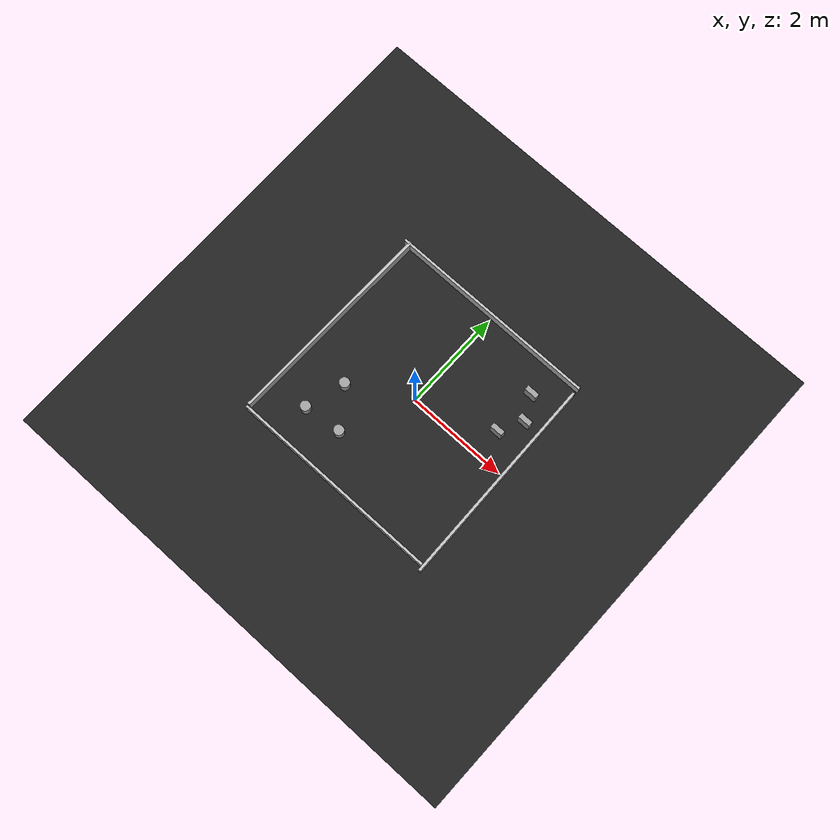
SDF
<sdf version="1.6">
 <world name="default">
  <scene>
   <ambient>0 0 0 1</ambient>
   <shadows>0</shadows>
   <grid>0</grid>
   <background>0.7 0.7 0.7 1</background>
  </scene>
  <include><uri>model://turtlebot3_autorace_2020/tag</uri></include>
  <include><uri>model://turtlebot3_autorace_2020/wall_f</uri><pose>0.008 -2.14 0.18 -0 0 -0</pose></include>
  <include><uri>model://turtlebot3_autorace_2020/wall_d</uri><pose>2.1 -0.15 0.18 -0 0 -1.5506</pose></include>
  <include><uri>model://turtlebot3_autorace_2020/wall_b</uri><pose>-0.017 2.072 0.18 0 0 0</pose></include>
  <include><uri>model://turtlebot3_autorace_2020/wall_e</uri><pose>-2.05 0.006 0.18 0 -0 1.5506</pose></include>
  <light name="sun" type="directional">
   <pose>0 0 10 0 -0 0</pose>
   <diffuse>0.8 0.8 0.8 1</diffuse>
   <specular>0.1 0.1 0.1 1</specular>
   <attenuation>
    <range>1000</range>
    <constant>0.9</constant>
    <linear>0.01</linear>
    <quadratic>0.001</quadratic>
   </attenuation>
   <direction>-0.5 0.5 -1</direction>
  </light>
  <model name="ground2">
   <pose>0 0 -0.1 0 -0 0</pose>
   <static>1</static>
   <link name="ground">
    <collision name="ground_coll"><geometry><box><size>8 8 0.01</size></box></geometry></collision>
    <visual name="ground_vis">
     <geometry><box><size>10 10 0.01</size></box></geometry>
     <material>
      <script><uri>file://media/materials/scripts/gazebo.material</uri><name>Gazebo/FlatBlack</name></script>
     </material>
    </visual>
   </link>
  </model>
  <gravity>0 0 -9.8</gravity>
  <magnetic_field>6e-06 2.3e-05 -4.2e-05</magnetic_field>
  <atmosphere type="adiabatic"/>
  <physics name="default_physics" default="0" type="ode">
   <max_step_size>0.001</max_step_size>
   <real_time_factor>1</real_time_factor>
   <real_time_update_rate>1000</real_time_update_rate>
  </physics>
  <spherical_coordinates>
   <surface_model>EARTH_WGS84</surface_model>
   <latitude_deg>0</latitude_deg>
   <longitude_deg>0</longitude_deg>
   <elevation>0</elevation>
   <heading_deg>0</heading_deg>
  </spherical_coordinates>
  <light name="user_point_light_1" type="point">
   <pose>-1.648146 0.604519 1 0 -0 0</pose>
   <diffuse>0.5 0.5 0.5 1</diffuse>
   <specular>0.1 0.1 0.1 1</specular>
   <attenuation>
    <range>20</range>
    <constant>0.5</constant>
    <linear>0.01</linear>
    <quadratic>0.001</quadratic>
   </attenuation>
   <cast_shadows>0</cast_shadows>
   <direction>0 0 -1</direction>
  </light>
  <light name="user_point_light_2" type="point">
   <pose>1.63854 1.69565 1 0 -0 0</pose>
   <diffuse>0.5 0.5 0.5 1</diffuse>
   <specular>0.1 0.1 0.1 1</specular>
   <attenuation>
    <range>20</range>
    <constant>0.5</constant>
    <linear>0.01</linear>
    <quadratic>0.001</quadratic>
   </attenuation>
   <cast_shadows>0</cast_shadows>
   <direction>0 0 -1</direction>
  </light>
  <light name="user_point_light_3" type="point">
   <pose>0.42  -3.31 1 0 -0 0</pose>
   <diffuse>0.5 0.5 0.5 1</diffuse>
   <specular>0.1 0.1 0.1 1</specular>
   <attenuation>
    <range>20</range>
    <constant>0.5</constant>
    <linear>0.01</linear>
    <quadratic>0.001</quadratic>
   </attenuation>
   <cast_shadows>0</cast_shadows>
   <direction>0 0 -1</direction>
  </light>
  <model name="tunnel_obstacle">
   <link name="obstacle_1">
    <pose>0.42322 -0.212034 0.0 0 -0 0</pose>
    <inertial>
     <mass>0.0416663</mass>
     <inertia>
      <ixx>0.00098188</ixx>
      <ixy>0</ixy>
      <ixz>0</ixz>
      <iyy>0.00098188</iyy>
      <iyz>0</iyz>
      <izz>0.00046751</izz>
     </inertia>
    </inertial>
    <visual name="visual">
     <geometry><cylinder><radius>0.1</radius><length>0.25</length></cylinder></geometry>
     <material>
      <lighting>1</lighting>
      <script><uri>file://media/materials/scripts/gazebo.material</uri><name>Gazebo/Grey</name></script>
      <ambient>0.3 0.3 0.3 1</ambient>
      <diffuse>0.7 0.7 0.7 1</diffuse>
      <specular>0.01 0.01 0.01 1</specular>
      <emissive>0 0 0 1</emissive>
      <shader type="pixel"><normal_map>__default__</normal_map></shader>
     </material>
    </visual>
    <collision name="collision">
     <geometry><cylinder><radius>0.1</radius><length>0.46418</length></cylinder></geometry>
     <surface>
      <friction>
       <ode><mu>1</mu><mu2>1</mu2><fdir1>0 0 0</fdir1><slip1>0</slip1><slip2>0</slip2></ode>
       <torsional>
        <coefficient>1</coefficient>
        <patch_radius>0</patch_radius>
        <surface_radius>0</surface_radius>
        <use_patch_radius>1</use_patch_radius>
        <ode><slip>0</slip></ode>
       </torsional>
      </friction>
      <bounce><restitution_coefficient>0</restitution_coefficient><threshold>1e+06</threshold></bounce>
      <contact>
       <collide_without_contact>0</collide_without_contact>
       <collide_without_contact_bitmask>1</collide_without_contact_bitmask>
       <collide_bitmask>1</collide_bitmask>
       <ode>
        <soft_cfm>0</soft_cfm>
        <soft_erp>0.2</soft_erp>
        <kp>1e+13</kp>
        <kd>1</kd>
        <max_vel>0.01</max_vel>
        <min_depth>0</min_depth>
       </ode>
       <bullet>
        <split_impulse>1</split_impulse>
        <split_impulse_penetration_threshold>-0.01</split_impulse_penetration_threshold>
        <soft_cfm>0</soft_cfm>
        <soft_erp>0.2</soft_erp>
        <kp>1e+13</kp>
        <kd>1</kd>
       </bullet>
      </contact>
     </surface>
    </collision>
   </link>
   <link name="obstacle_2">
    <pose>-0.323729 -0.287563 0.0 0 -0 0</pose>
    <inertial>
     <mass>0.0416663</mass>
     <inertia>
      <ixx>0.00098188</ixx>
      <ixy>0</ixy>
      <ixz>0</ixz>
      <iyy>0.00098188</iyy>
      <iyz>0</iyz>
      <izz>0.00046751</izz>
     </inertia>
    </inertial>
    <visual name="visual">
     <geometry><cylinder><radius>0.1</radius><length>0.25</length></cylinder></geometry>
     <material>
      <lighting>1</lighting>
      <script><uri>file://media/materials/scripts/gazebo.material</uri><name>Gazebo/Grey</name></script>
      <ambient>0.3 0.3 0.3 1</ambient>
      <diffuse>0.7 0.7 0.7 1</diffuse>
      <specular>0.01 0.01 0.01 1</specular>
      <emissive>0 0 0 1</emissive>
      <shader type="pixel"><normal_map>__default__</normal_map></shader>
     </material>
    </visual>
    <collision name="collision">
     <geometry><cylinder><radius>0.1</radius><length>0.46418</length></cylinder></geometry>
     <surface>
      <friction>
       <ode><mu>1</mu><mu2>1</mu2><fdir1>0 0 0</fdir1><slip1>0</slip1><slip2>0</slip2></ode>
       <torsional>
        <coefficient>1</coefficient>
        <patch_radius>0</patch_radius>
        <surface_radius>0</surface_radius>
        <use_patch_radius>1</use_patch_radius>
        <ode><slip>0</slip></ode>
       </torsional>
      </friction>
      <bounce><restitution_coefficient>0</restitution_coefficient><threshold>1e+06</threshold></bounce>
      <contact>
       <collide_without_contact>0</collide_without_contact>
       <collide_without_contact_bitmask>1</collide_without_contact_bitmask>
       <collide_bitmask>1</collide_bitmask>
       <ode>
        <soft_cfm>0</soft_cfm>
        <soft_erp>0.2</soft_erp>
        <kp>1e+13</kp>
        <kd>1</kd>
        <max_vel>0.01</max_vel>
        <min_depth>0</min_depth>
       </ode>
       <bullet>
        <split_impulse>1</split_impulse>
        <split_impulse_penetration_threshold>-0.01</split_impulse_penetration_threshold>
        <soft_cfm>0</soft_cfm>
        <soft_erp>0.2</soft_erp>
        <kp>1e+13</kp>
        <kd>1</kd>
       </bullet>
      </contact>
     </surface>
    </collision>
   </link>
   <link name="obstacle_3">
    <pose>-0.099492 0.499594 0.0 0 -0 0</pose>
    <inertial>
     <mass>0.0416663</mass>
     <inertia>
      <ixx>0.00098188</ixx>
      <ixy>0</ixy>
      <ixz>0</ixz>
      <iyy>0.00098188</iyy>
      <iyz>0</iyz>
      <izz>0.00046751</izz>
     </inertia>
    </inertial>
    <visual name="visual">
     <geometry><cylinder><radius>0.1</radius><length>0.25</length></cylinder></geometry>
     <material>
      <lighting>1</lighting>
      <script><uri>file://media/materials/scripts/gazebo.material</uri><name>Gazebo/Grey</name></script>
      <ambient>0.3 0.3 0.3 1</ambient>
      <diffuse>0.7 0.7 0.7 1</diffuse>
      <specular>0.01 0.01 0.01 1</specular>
      <emissive>0 0 0 1</emissive>
      <shader type="pixel"><normal_map>__default__</normal_map></shader>
     </material>
    </visual>
    <collision name="collision">
     <geometry><cylinder><radius>0.1</radius><length>0.46418</length></cylinder></geometry>
     <surface>
      <friction>
       <ode><mu>1</mu><mu2>1</mu2><fdir1>0 0 0</fdir1><slip1>0</slip1><slip2>0</slip2></ode>
       <torsional>
        <coefficient>1</coefficient>
        <patch_radius>0</patch_radius>
        <surface_radius>0</surface_radius>
        <use_patch_radius>1</use_patch_radius>
        <ode><slip>0</slip></ode>
       </torsional>
      </friction>
      <bounce><restitution_coefficient>0</restitution_coefficient><threshold>1e+06</threshold></bounce>
      <contact>
       <collide_without_contact>0</collide_without_contact>
       <collide_without_contact_bitmask>1</collide_without_contact_bitmask>
       <collide_bitmask>1</collide_bitmask>
       <ode>
        <soft_cfm>0</soft_cfm>
        <soft_erp>0.2</soft_erp>
        <kp>1e+13</kp>
        <kd>1</kd>
        <max_vel>0.01</max_vel>
        <min_depth>0</min_depth>
       </ode>
       <bullet>
        <split_impulse>1</split_impulse>
        <split_impulse_penetration_threshold>-0.01</split_impulse_penetration_threshold>
        <soft_cfm>0</soft_cfm>
        <soft_erp>0.2</soft_erp>
        <kp>1e+13</kp>
        <kd>1</kd>
       </bullet>
      </contact>
     </surface>
    </collision>
   </link>
   <static>1</static>
   <pose>-1.04145 -1.12671 0 0 -0 0</pose>
  </model>
  <model name="barrier_1">
   <link name="link">
    <inertial>
     <mass>1</mass>
     <inertia>
      <ixx>0.166667</ixx>
      <ixy>0</ixy>
      <ixz>0</ixz>
      <iyy>0.166667</iyy>
      <iyz>0</iyz>
      <izz>0.166667</izz>
     </inertia>
    </inertial>
    <visual name="visual">
     <geometry><box><size>0.25 0.1 0.3</size></box></geometry>
     <material>
      <script><name>Gazebo/Grey</name><uri>file://media/materials/scripts/gazebo.material</uri></script>
      <shader type="pixel"><normal_map>__default__</normal_map></shader>
      <ambient>0.3 0.3 0.3 1</ambient>
      <diffuse>0.7 0.7 0.7 1</diffuse>
      <specular>0.01 0.01 0.01 1</specular>
      <emissive>0 0 0 1</emissive>
     </material>
    </visual>
    <collision name="collision">
     <geometry><box><size>0.25 0.1 0.3</size></box></geometry>
     <surface>
      <friction>
       <ode><mu>1</mu><mu2>1</mu2><fdir1>0 0 0</fdir1><slip1>0</slip1><slip2>0</slip2></ode>
       <torsional>
        <coefficient>1</coefficient>
        <patch_radius>0</patch_radius>
        <surface_radius>0</surface_radius>
        <use_patch_radius>1</use_patch_radius>
        <ode><slip>0</slip></ode>
       </torsional>
      </friction>
      <bounce><restitution_coefficient>0</restitution_coefficient><threshold>1e+06</threshold></bounce>
      <contact>
       <collide_without_contact>0</collide_without_contact>
       <collide_without_contact_bitmask>1</collide_without_contact_bitmask>
       <collide_bitmask>1</collide_bitmask>
       <ode>
        <soft_cfm>0</soft_cfm>
        <soft_erp>0.2</soft_erp>
        <kp>1e+13</kp>
        <kd>1</kd>
        <max_vel>0.01</max_vel>
        <min_depth>0</min_depth>
       </ode>
       <bullet>
        <split_impulse>1</split_impulse>
        <split_impulse_penetration_threshold>-0.01</split_impulse_penetration_threshold>
        <soft_cfm>0</soft_cfm>
        <soft_erp>0.2</soft_erp>
        <kp>1e+13</kp>
        <kd>1</kd>
       </bullet>
      </contact>
     </surface>
    </collision>
   </link>
   <static>0</static>
   <pose>1.49 0.54 0.15 0 -0 0</pose>
  </model>
  <model name="barrier_2">
   <link name="link">
    <inertial>
     <mass>1</mass>
     <inertia>
      <ixx>0.166667</ixx>
      <ixy>0</ixy>
      <ixz>0</ixz>
      <iyy>0.166667</iyy>
      <iyz>0</iyz>
      <izz>0.166667</izz>
     </inertia>
    </inertial>
    <visual name="visual">
     <geometry><box><size>0.25 0.1 0.3</size></box></geometry>
     <material>
      <script><name>Gazebo/Grey</name><uri>file://media/materials/scripts/gazebo.material</uri></script>
      <shader type="pixel"><normal_map>__default__</normal_map></shader>
      <ambient>0.3 0.3 0.3 1</ambient>
      <diffuse>0.7 0.7 0.7 1</diffuse>
      <specular>0.01 0.01 0.01 1</specular>
      <emissive>0 0 0 1</emissive>
     </material>
    </visual>
    <collision name="collision">
     <geometry><box><size>0.25 0.1 0.3</size></box></geometry>
     <surface>
      <friction>
       <ode><mu>1</mu><mu2>1</mu2><fdir1>0 0 0</fdir1><slip1>0</slip1><slip2>0</slip2></ode>
       <torsional>
        <coefficient>1</coefficient>
        <patch_radius>0</patch_radius>
        <surface_radius>0</surface_radius>
        <use_patch_radius>1</use_patch_radius>
        <ode><slip>0</slip></ode>
       </torsional>
      </friction>
      <bounce><restitution_coefficient>0</restitution_coefficient><threshold>1e+06</threshold></bounce>
      <contact>
       <collide_without_contact>0</collide_without_contact>
       <collide_without_contact_bitmask>1</collide_without_contact_bitmask>
       <collide_bitmask>1</collide_bitmask>
       <ode>
        <soft_cfm>0</soft_cfm>
        <soft_erp>0.2</soft_erp>
        <kp>1e+13</kp>
        <kd>1</kd>
        <max_vel>0.01</max_vel>
        <min_depth>0</min_depth>
       </ode>
       <bullet>
        <split_impulse>1</split_impulse>
        <split_impulse_penetration_threshold>-0.01</split_impulse_penetration_threshold>
        <soft_cfm>0</soft_cfm>
        <soft_erp>0.2</soft_erp>
        <kp>1e+13</kp>
        <kd>1</kd>
       </bullet>
      </contact>
     </surface>
    </collision>
   </link>
   <static>0</static>
   <pose>1.74 1 0.15 0 -0 0</pose>
  </model>
  <model name="barrier_3">
   <link name="link">
    <inertial>
     <mass>1</mass>
     <inertia>
      <ixx>0.166667</ixx>
      <ixy>0</ixy>
      <ixz>0</ixz>
      <iyy>0.166667</iyy>
      <iyz>0</iyz>
      <izz>0.166667</izz>
     </inertia>
    </inertial>
    <visual name="visual">
     <geometry><box><size>0.25 0.1 0.3</size></box></geometry>
     <material>
      <script><name>Gazebo/Grey</name><uri>file://media/materials/scripts/gazebo.material</uri></script>
      <shader type="pixel"><normal_map>__default__</normal_map></shader>
      <ambient>0.3 0.3 0.3 1</ambient>
      <diffuse>0.7 0.7 0.7 1</diffuse>
      <specular>0.01 0.01 0.01 1</specular>
      <emissive>0 0 0 1</emissive>
     </material>
    </visual>
    <collision name="collision">
     <geometry><box><size>0.25 0.1 0.3</size></box></geometry>
     <surface>
      <friction>
       <ode><mu>1</mu><mu2>1</mu2><fdir1>0 0 0</fdir1><slip1>0</slip1><slip2>0</slip2></ode>
       <torsional>
        <coefficient>1</coefficient>
        <patch_radius>0</patch_radius>
        <surface_radius>0</surface_radius>
        <use_patch_radius>1</use_patch_radius>
        <ode><slip>0</slip></ode>
       </torsional>
      </friction>
      <bounce><restitution_coefficient>0</restitution_coefficient><threshold>1e+06</threshold></bounce>
      <contact>
       <collide_without_contact>0</collide_without_contact>
       <collide_without_contact_bitmask>1</collide_without_contact_bitmask>
       <collide_bitmask>1</collide_bitmask>
       <ode>
        <soft_cfm>0</soft_cfm>
        <soft_erp>0.2</soft_erp>
        <kp>1e+13</kp>
        <kd>1</kd>
        <max_vel>0.01</max_vel>
        <min_depth>0</min_depth>
       </ode>
       <bullet>
        <split_impulse>1</split_impulse>
        <split_impulse_penetration_threshold>-0.01</split_impulse_penetration_threshold>
        <soft_cfm>0</soft_cfm>
        <soft_erp>0.2</soft_erp>
        <kp>1e+13</kp>
        <kd>1</kd>
       </bullet>
      </contact>
     </surface>
    </collision>
   </link>
   <static>0</static>
   <pose>1.49 1.464 0.15 0 -0 0</pose>
  </model>
 </world>
</sdf>

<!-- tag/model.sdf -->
<sdf version="1.6">
  <model name="tag">
    <pose>0 0 0.125 0 0 0</pose>
    <link name="box">
      <pose>0 0 0 0 0 0</pose>
      <collision name="collision">
        <geometry>
          <box>
            <size>0.125 0.090 0.12</size>
          </box>
        </geometry>
      </collision>
      <visual name="visual">
        <geometry>
          <box>
            <size>0.125 0.090 0.12</size>
          </box>
        </geometry>
        <material>
          <script>
            <uri>model://turtlebot3_autorace_2020/tag/materials/scripts</uri>
            <uri>model://turtlebot3_autorace_2020/tag/materials/textures</uri>
            <name>tag</name>
          </script>
        </material>
      </visual>
    </link>
  </model>
</sdf>

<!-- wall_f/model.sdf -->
<sdf version="1.6">
  <model name="wall_f">
    <pose>0 0 0.125 0 0 0</pose>
    <link name="box">
      <pose>0 0 0 0 0 0</pose>
      <collision name="collision">
        <geometry>
          <box>
            <size>4.2 0.05 0.25</size>
          </box>
        </geometry>
      </collision>
      <visual name="visual">
        <geometry>
          <box>
            <size>4.2 0.05 0.25</size>
          </box>
        </geometry>
        <material>
          <script>
            <uri>model://turtlebot3_autorace_2020/wall_f/materials/scripts</uri>
            <uri>model://turtlebot3_autorace_2020/wall_f/materials/textures</uri>
            <name>wall_f</name>
          </script>
        </material>
      </visual>
    </link>
  </model>
</sdf>

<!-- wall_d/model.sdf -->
<sdf version="1.6">
  <model name="wall_d">
    <pose>0 0 0.125 0 0 0</pose>
    <link name="box">
      <pose>0 0 0 0 0 0</pose>
      <collision name="collision">
        <geometry>
          <box>
            <size>4.2 0.05 0.25</size>
          </box>
        </geometry>
      </collision>
      <visual name="visual">
        <geometry>
          <box>
            <size>4.2 0.05 0.25</size>
          </box>
        </geometry>
        <material>
          <script>
            <uri>model://turtlebot3_autorace_2020/wall_d/materials/scripts</uri>
            <uri>model://turtlebot3_autorace_2020/wall_d/materials/textures</uri>
            <name>wall_d</name>
          </script>
        </material>
      </visual>
    </link>
  </model>
</sdf>

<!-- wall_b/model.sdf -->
<sdf version="1.6">
  <model name="wall_b">
    <pose>0 0 0.125 0 0 0</pose>
    <link name="box">
      <pose>0 0 0 0 0 0</pose>
      <collision name="collision">
        <geometry>
          <box>
            <size>4.2 0.05 0.25</size>
          </box>
        </geometry>
      </collision>
      <visual name="visual">
        <geometry>
          <box>
            <size>4.2 0.05 0.25</size>
          </box>
        </geometry>
        <material>
          <script>
            <uri>model://turtlebot3_autorace_2020/wall_b/materials/scripts</uri>
            <uri>model://turtlebot3_autorace_2020/wall_b/materials/textures</uri>
            <name>wall_b</name>
          </script>
        </material>
      </visual>
    </link>
  </model>
</sdf>

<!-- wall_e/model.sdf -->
<sdf version="1.6">
  <model name="wall_e">
    <pose>0 0 0.125 0 0 0</pose>
    <link name="box">
      <pose>0 0 0 0 0 0</pose>
      <collision name="collision">
        <geometry>
          <box>
            <size>4.2 0.05 0.25</size>
          </box>
        </geometry>
      </collision>
      <visual name="visual">
        <geometry>
          <box>
            <size>4.2 0.05 0.25</size>
          </box>
        </geometry>
        <material>
          <script>
            <uri>model://turtlebot3_autorace_2020/wall_e/materials/scripts</uri>
            <uri>model://turtlebot3_autorace_2020/wall_e/materials/textures</uri>
            <name>wall_e</name>
          </script>
        </material>
      </visual>
    </link>
  </model>
</sdf>
